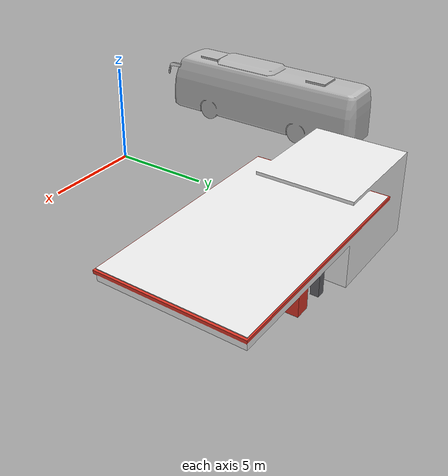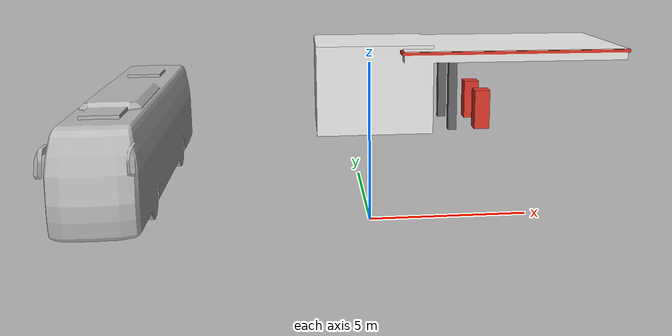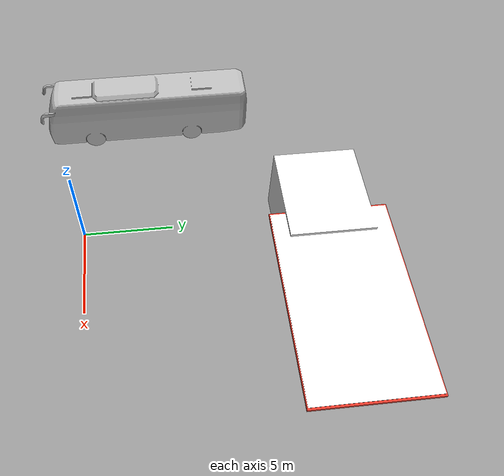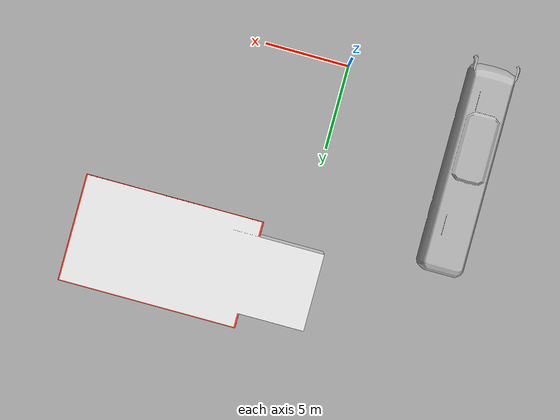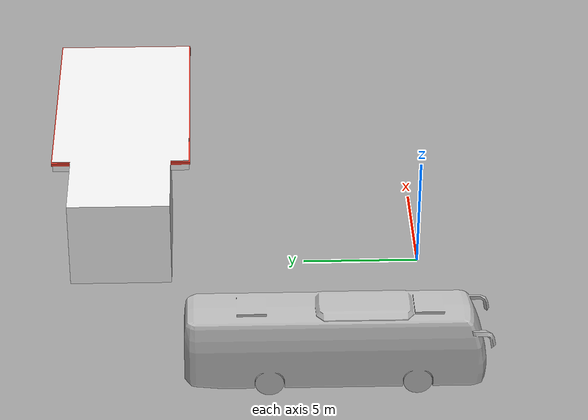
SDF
<sdf version='1.7'>

  <!-- https://github.com/uuvsimulator/uuv_simulator/wiki/Making-your-seabed-world-model -->

  <spherical_coordinates>
    <surface_model>EARTH_WGS84</surface_model>
    <world_frame_orientation>ENU</world_frame_orientation>

    <latitude_deg>38.161479</latitude_deg>
    <longitude_deg>-122.454630</longitude_deg>
    <elevation>0</elevation>
    <heading_deg>180</heading_deg>
  </spherical_coordinates>

  <world name='simulation'>
    <frame name='earth'>
      <pose>0 0 0 0 -0 0</pose>
    </frame>
    <model name='ground_plane'>
      <static>1</static>
      <link name='ground'>
        <collision name='collision'>
          <geometry>
            <plane>
              <normal>0 0 1</normal>
              <size>100 100</size>
              <xyz>0 0 -1</xyz>
            </plane>
          </geometry>
          <surface>
            <friction>
              <ode>
                <mu>100</mu>
                <mu2>50</mu2>
              </ode>
              <torsional>
                <ode />
              </torsional>
            </friction>
            <contact>
              <ode />
            </contact>
            <bounce />
          </surface>
          <max_contacts>10</max_contacts>
        </collision>
        <self_collide>0</self_collide>
        <enable_wind>0</enable_wind>
        <kinematic>0</kinematic>
      </link>
    </model>
    <gravity>0 0 -9.8</gravity>
    <magnetic_field>6e-06 2.3e-05 -4.2e-05</magnetic_field>
    <atmosphere type='adiabatic' />
    <physics type='ode'>
      <max_step_size>0.001</max_step_size>
      <real_time_factor>1</real_time_factor>
      <real_time_update_rate>1000</real_time_update_rate>
    </physics>
    <scene>
      <ambient>0.4 0.4 0.4 1</ambient>
      <background>0.7 0.7 0.7 1</background>
      <shadows>1</shadows>
    </scene>
    <audio>
      <device>default</device>
    </audio>
    <wind />
    <spherical_coordinates>
      <surface_model>EARTH_WGS84</surface_model>
      <latitude_deg>0</latitude_deg>
      <longitude_deg>0</longitude_deg>
      <elevation>0</elevation>
      <heading_deg>0</heading_deg>
    </spherical_coordinates>

    <model name='bus'>
      <static>1</static>
      <link name='link'>
        <collision name='collision'>
          <geometry>
            <mesh>
              <scale>0.01 0.01 0.01</scale>
              <uri>model://bus/meshes/bus.obj</uri>
            </mesh>
          </geometry>
          <max_contacts>10</max_contacts>
          <surface>
            <contact>
              <ode />
            </contact>
            <bounce />
            <friction>
              <torsional>
                <ode />
              </torsional>
              <ode />
            </friction>
          </surface>
        </collision>
        <visual name='visual'>
          <geometry>
            <mesh>
              <scale>0.01 0.01 0.01</scale>
              <uri>model://bus/meshes/bus.obj</uri>
            </mesh>
          </geometry>
        </visual>
        <self_collide>0</self_collide>
        <enable_wind>0</enable_wind>
        <kinematic>0</kinematic>
      </link>
      <pose>-8 4 0 0 -0 0</pose>
    </model>
    <model name='Gas Station'>
      <static>1</static>
      <link name='link'>
        <pose>0 0 0 0 -0 0</pose>
        <collision name='collision'>
          <geometry>
            <mesh>
              <uri>model://gas_station/meshes/gas_station.dae</uri>
            </mesh>
          </geometry>
          <max_contacts>10</max_contacts>
          <surface>
            <contact>
              <ode />
            </contact>
            <bounce />
            <friction>
              <torsional>
                <ode />
              </torsional>
              <ode />
            </friction>
          </surface>
        </collision>
        <visual name='visual'>
          <geometry>
            <mesh>
              <uri>model://gas_station/meshes/gas_station.dae</uri>
            </mesh>
          </geometry>
          <material>
            <script>
              <uri>model://gas_station/materials/scripts</uri>
              <uri>model://gas_station/materials/textures</uri>
              <name>GasStation/Diffuse</name>
            </script>
            <shader type='normal_map_tangent_space'>
              <normal_map>GasStation_Normal.png</normal_map>
            </shader>
          </material>
        </visual>
        <self_collide>0</self_collide>
        <enable_wind>0</enable_wind>
        <kinematic>0</kinematic>
      </link>
      <pose>5 13 0 0 -0 0</pose>
    </model>

  </world>
</sdf>
